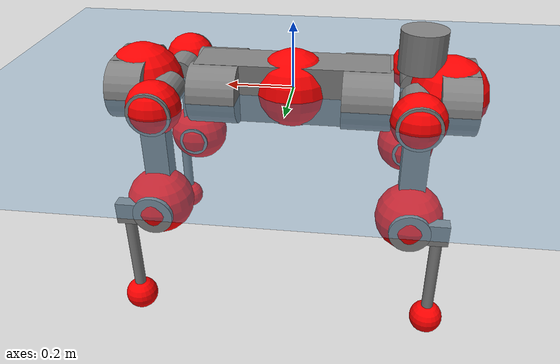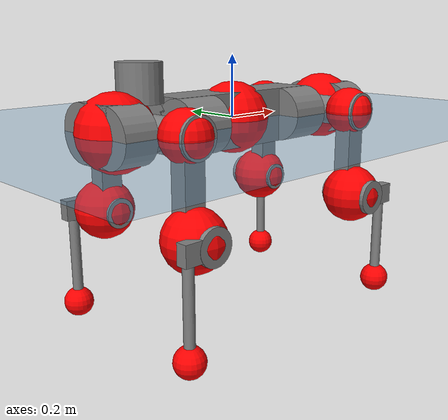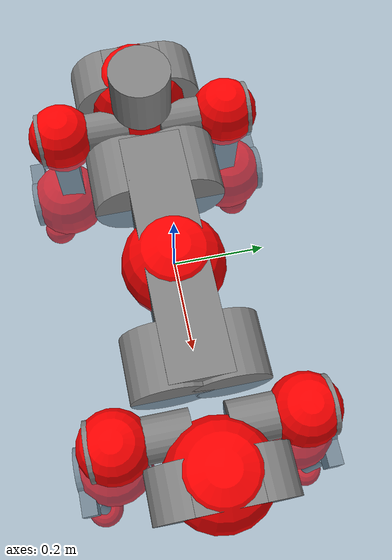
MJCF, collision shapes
<mujoco model="anymal_c">
  <compiler angle="radian" assetdir="assets" balanceinertia="true" inertiafromgeom="false"/>

  <option timestep="0.005" density="1.2" viscosity="2e-05"/>

  <size nkey="1"/>

  <visual>
    <quality shadowsize="8192"/>
    <map shadowclip="0.5"/>
  </visual>

  <default>
    <default class="/">
      <material specular="0" shininess="0.25"/>
      <geom contype="0" conaffinity="0" group="1" solref="-1000 -80"/>
      <site size="0.01 0.005 0.005" group="5"/>
      <general forcelimited="true" forcerange="-80 80" biastype="affine" gainprm="80" biasprm="0 -80 -2"/>
      <default class="anymal_c">
        <joint armature="0.01" damping="0.01" frictionloss="0.1"/>
        <default class="visual">
          <geom type="mesh" group="2"/>
          <default class="visual_zflip"/>
        </default>
        <default class="collision">
          <geom type="cylinder" group="3"/>
          <default class="foot">
            <geom size="0.03 0 0" type="sphere" condim="6" priority="1" friction="0.8 0.02 0.01" solimp="0.015 1 0.03"/>
          </default>
        </default>
      </default>
      <default class="reward_collision_sphere">
        <geom group="5" rgba="1 0 0 1"/>
      </default>
    </default>
  </default>

  <asset>
    <texture type="skybox" colorspace="auto" name="//unnamed_texture_0" builtin="gradient" rgb1="0.95 0.95 0.95" rgb2="0.95 0.95 0.95" width="100" height="600"/>
    <texture type="2d" colorspace="auto" name="texplane" builtin="checker" rgb1="0.345 0.575 0.748" rgb2="0.345 0.575 0.748" markrgb="1 1 1" width="512" height="512"/>
    <texture type="2d" colorspace="linear" name="base" file="base.png"/>
    <texture type="2d" colorspace="linear" name="top_shell" file="top_shell.png"/>
    <texture type="2d" colorspace="linear" name="bottom_shell" file="bottom_shell.png"/>
    <texture type="2d" colorspace="linear" name="remote" file="remote.png"/>
    <texture type="2d" colorspace="linear" name="hatch" file="hatch.png"/>
    <texture type="2d" colorspace="linear" name="handle" file="handle.png"/>
    <texture type="2d" colorspace="linear" name="face" file="face.png"/>
    <texture type="2d" colorspace="linear" name="battery" file="battery.png"/>
    <texture type="2d" colorspace="linear" name="lidar_cage" file="lidar_cage.png"/>
    <texture type="2d" colorspace="linear" name="depth_camera" file="depth_camera.png"/>
    <texture type="2d" colorspace="linear" name="wide_angle_camera" file="wide_angle_camera.png"/>
    <texture type="2d" colorspace="linear" name="lidar" file="lidar.png"/>
    <texture type="2d" colorspace="linear" name="drive" file="drive.png"/>
    <texture type="2d" colorspace="linear" name="hip_l" file="hip_l.png"/>
    <texture type="2d" colorspace="linear" name="shank_l" file="shank_l.png"/>
    <texture type="2d" colorspace="linear" name="foot" file="foot.png"/>
    <texture type="2d" colorspace="linear" name="thigh" file="thigh.png"/>
    <texture type="2d" colorspace="linear" name="shank_r" file="shank_r.png"/>
    <texture type="2d" colorspace="linear" name="hip_r" file="hip_r.png"/>
    <material name="MatPlane" class="/" texture="texplane" texuniform="true" texrepeat="2 2" specular="0.9" shininess="0.5"/>
    <material name="black_plastic" class="/" rgba="0.007 0.007 0.007 1"/>
    <material name="green" class="/" rgba="0.052 0.178 0.033 1"/>
    <material name="red" class="/" rgba="0.178 0.006 0.005 1"/>
    <material name="yellow" class="/" rgba="0.178 0.119 0.006 1"/>
    <material name="lwl" class="/" rgba="0.8 0.8 0.8 1"/>
    <material name="base" class="/" texture="base"/>
    <material name="top_shell" class="/" texture="top_shell"/>
    <material name="bottom_shell" class="/" texture="bottom_shell"/>
    <material name="hip_l" class="/" texture="hip_l"/>
    <material name="thigh" class="/" texture="thigh"/>
    <material name="shank_l" class="/" texture="shank_l"/>
    <material name="foot" class="/" texture="foot"/>
    <material name="hip_r" class="/" texture="hip_r"/>
    <material name="shank" class="/" texture="shank_r"/>
    <material name="hatch" class="/" texture="hatch"/>
    <material name="remote" class="/" texture="remote"/>
    <material name="handle" class="/" texture="handle"/>
    <material name="face" class="/" texture="face"/>
    <material name="depth_camera" class="/" texture="depth_camera"/>
    <material name="wide_angle_camera" class="/" texture="wide_angle_camera"/>
    <material name="battery" class="/" texture="battery"/>
    <material name="lidar_cage" class="/" texture="lidar_cage"/>
    <material name="lidar" class="/" texture="lidar"/>
    <material name="drive" class="/" texture="drive"/>
    <mesh name="base_0" class="/" file="base_0.obj"/>
    <mesh name="base_1" class="/" file="base_1.obj"/>
    <mesh name="base_2" class="/" file="base_2.obj"/>
    <mesh name="base_3" class="/" file="base_3.obj"/>
    <mesh name="base_4" class="/" file="base_4.obj"/>
    <mesh name="base_5" class="/" file="base_5.obj"/>
    <mesh name="top_shell" class="/" file="top_shell.obj"/>
    <mesh name="bottom_shell" class="/" file="bottom_shell.obj"/>
    <mesh name="remote" class="/" file="remote.obj"/>
    <mesh name="handle" class="/" file="handle.obj"/>
    <mesh name="face" class="/" file="face.obj"/>
    <mesh name="wide_angle_camera" class="/" file="wide_angle_camera.obj"/>
    <mesh name="depth_camera" class="/" file="depth_camera.obj"/>
    <mesh name="battery" class="/" file="battery.obj"/>
    <mesh name="lidar_cage" class="/" file="lidar_cage.obj"/>
    <mesh name="lidar" class="/" file="lidar.obj"/>
    <mesh name="drive" class="/" file="drive.obj"/>
    <mesh name="hip_l" class="/" file="hip_l.obj"/>
    <mesh name="thigh" class="/" file="thigh.obj"/>
    <mesh name="shank_l" class="/" file="shank_l.obj"/>
    <mesh name="foot" class="/" file="foot.obj"/>
    <mesh name="hip_r" class="/" file="hip_r.obj"/>
    <mesh name="hatch" class="/" file="hatch.obj"/>
    <mesh name="shank_r" class="/" file="shank_r.obj"/>
  </asset>

  <worldbody>
    <geom name="floor" class="/" size="100 100 0.125" type="plane" group="0" material="MatPlane"/>
    <light name="toplight_shadow" class="/" pos="0 0 5" dir="0.0990148 0.0990148 -0.990148" type="directional" ambient="0.04 0.04 0.04" diffuse="0.55 0.55 0.55" specular="0.12 0.12 0.12"/>
    <light name="toplight_fill" class="/" pos="0 0 5" dir="0.0990148 0.0990148 -0.990148" type="directional" castshadow="false" ambient="0.04 0.04 0.04" diffuse="0.3 0.3 0.3" specular="0.08 0.08 0.08"/>
    <body name="trunk" childclass="anymal_c" pos="0.000344336 -0.000497253 0.000243769" quat="1 1.16349e-05 -8.62457e-05 -0.000173615">
      <inertial pos="0.00233986 -0.000570092 0.0498854" quat="0.501428 0.502285 0.496127 0.500138" mass="17.5239" diaginertia="0.704688 0.356739 0.232789"/>
      <joint name="//unnamed_joint_0" type="free" armature="0" damping="0" frictionloss="0"/>
      <geom name="//unnamed_geom_1" class="visual" material="green" mesh="base_0"/>
      <geom name="//unnamed_geom_2" class="visual" material="yellow" mesh="base_1"/>
      <geom name="//unnamed_geom_3" class="visual" material="red" mesh="base_2"/>
      <geom name="//unnamed_geom_4" class="visual" material="black_plastic" mesh="base_3"/>
      <geom name="//unnamed_geom_5" class="visual" material="lwl" mesh="base_4"/>
      <geom name="//unnamed_geom_6" class="visual" material="base" mesh="base_5"/>
      <geom name="trunk_1" class="collision" size="0.283269 0.0683752 0.087911" type="box"/>
      <geom name="trunk_2" class="collision" size="0.087911 0.0708172" pos="0.221782 0.0627687 0" quat="0.707107 0 0.707107 0"/>
      <geom name="trunk_3" class="collision" size="0.087911 0.0708172" pos="-0.221782 0.0627687 0" quat="0.707107 0 0.707107 0"/>
      <geom name="trunk_4" class="collision" size="0.087911 0.0708172" pos="0.221782 -0.0627687 0" quat="0.707107 0 0.707107 0"/>
      <geom name="trunk_5" class="collision" size="0.087911 0.0708172" pos="-0.221782 -0.0627687 0" quat="0.707107 0 0.707107 0"/>
      <geom name="//unnamed_geom_12" class="visual" material="top_shell" mesh="top_shell"/>
      <geom name="//unnamed_geom_13" class="visual" material="bottom_shell" mesh="bottom_shell"/>
      <geom name="//unnamed_geom_14" class="visual" material="remote" mesh="remote"/>
      <geom name="//unnamed_geom_15" class="visual" material="handle" mesh="handle"/>
      <geom name="//unnamed_geom_16" class="visual" pos="0.42266 0 0" quat="1 0 0 0" material="face" mesh="face"/>
      <geom name="trunk_6" class="collision" size="0.0537234 0.0683752 0.087911" pos="0.478743 0 0" type="box"/>
      <geom name="//unnamed_geom_18" class="collision" size="0.087911 0.0537234" pos="0.478743 0.0627687 0" quat="0.707107 0 0.707107 0"/>
      <geom name="//unnamed_geom_19" class="collision" size="0.087911 0.0537234" pos="0.478743 -0.0627687 0" quat="0.707107 0 0.707107 0"/>
      <geom name="//unnamed_geom_20" class="visual" pos="0.470738 0 -0.029565" quat="0.965926 0 0.258819 0" material="depth_camera" mesh="depth_camera"/>
      <geom name="//unnamed_geom_21" class="visual" pos="0.523099 0 0.0151793" material="wide_angle_camera" mesh="wide_angle_camera"/>
      <geom name="//unnamed_geom_22" class="visual_zflip" pos="-0.42266 0 0" quat="0 0 0 1" material="face" mesh="face"/>
      <geom name="trunk_7" class="collision" size="0.0537234 0.0683752 0.087911" pos="-0.478743 0 0" quat="0 0 0 1" type="box"/>
      <geom name="//unnamed_geom_24" class="collision" size="0.087911 0.0537234" pos="-0.478743 -0.0627687 0" quat="0 -0.707107 0 0.707107"/>
      <geom name="//unnamed_geom_25" class="collision" size="0.087911 0.0537234" pos="-0.478743 0.0627687 0" quat="0 -0.707107 0 0.707107"/>
      <geom name="//unnamed_geom_26" class="visual" pos="-0.470738 0 -0.029565" quat="0 -0.258819 0 0.965926" material="depth_camera" mesh="depth_camera"/>
      <geom name="//unnamed_geom_27" class="visual_zflip" pos="-0.523099 0 0.0151793" quat="0 0 0 1" material="wide_angle_camera" mesh="wide_angle_camera"/>
      <geom name="//unnamed_geom_28" class="visual" material="battery" mesh="battery"/>
      <geom name="//unnamed_geom_29" class="visual" pos="0 0.0669472 0.0294996" quat="0.683013 -0.183013 0.183013 0.683013" material="depth_camera" mesh="depth_camera"/>
      <geom name="//unnamed_geom_30" class="visual" pos="0 -0.0669472 0.0294996" quat="0.683013 0.183013 0.183013 -0.683013" material="depth_camera" mesh="depth_camera"/>
      <geom name="//unnamed_geom_31" class="visual" pos="-0.371166 0 0.0745278" quat="1 0 0 0" material="lidar_cage" mesh="lidar_cage"/>
      <geom name="trunk_8" class="collision" size="0.0683752 0.0586073" pos="-0.371166 0 0.135367"/>
      <geom name="//unnamed_geom_33" class="visual" pos="-0.371166 -4.83198e-05 0.144189" quat="0.707107 0 0 -0.707107" material="lidar" mesh="lidar"/>
      <geom name="//unnamed_geom_34" class="visual" pos="0.305804 0.093298 -2.02324e-09" quat="0.258819 0.965926 0 0" material="drive" mesh="drive"/>
      <geom name="//unnamed_geom_35" class="visual" pos="0.305804 -0.093298 2.02324e-09" quat="0.258819 -0.965926 0 0" material="drive" mesh="drive"/>
      <geom name="//unnamed_geom_36" class="visual" pos="-0.305804 0.093298 2.02324e-09" quat="0 0 0.965926 -0.258819" material="drive" mesh="drive"/>
      <geom name="//unnamed_geom_37" class="visual" pos="-0.305804 -0.093298 -2.02324e-09" quat="0 0 -0.965926 -0.258819" material="drive" mesh="drive"/>
      <geom name="//unnamed_geom_38" class="visual" pos="0.118284 0 0.0740208" quat="1 0 0 0" material="hatch" mesh="hatch"/>
      <geom name="//unnamed_geom_39" class="reward_collision_sphere" size="0.117215"/>
      <geom name="//unnamed_geom_40" class="reward_collision_sphere" size="0.117215" pos="0.458859 0 0"/>
      <geom name="//unnamed_geom_41" class="reward_collision_sphere" size="0.117215" pos="-0.458859 0 0"/>
      <site name="imu" pos="0.254794 0.00580866 0.0421468" size="0.00976789"/>
      <camera name="track" pos="0 -1.79339 0" quat="0.707107 0.707107 0 0" mode="trackcom"/>
      <camera name="ego_camera" pos="0.458859 0 -0.0405594" quat="-0.5 -0.5 0.5 0.5"/>
      <body name="LF_HIP" pos="0.306785 0.0936301 0.00146738" quat="0.258815 0.965927 2.45072e-05 -2.11241e-05">
        <inertial pos="0.05714 -0.0129628 -0.00849736" quat="-0.12795 0.709748 -0.135272 0.679402" mass="2.58395" diaginertia="0.00643612 0.00288257 0.0035286"/>
        <joint name="LF_HAA" pos="0 0 0" axis="0.99995 0.00280152 -0.00956617" range="-0.716173 0.488969" armature="0.00933472" damping="0.0128719" frictionloss="0.093424"/>
        <geom name="//unnamed_geom_42" class="visual" pos="0 -0.000119018 1.95486e-05" quat="0.258819 -0.965926 0 0" material="hip_l" mesh="hip_l"/>
        <geom name="//unnamed_geom_43" class="visual" pos="0.0610792 -0.0724328 -0.0426866" quat="0.183013 -0.683013 0.683013 0.183013" material="drive" mesh="drive"/>
        <geom name="//unnamed_geom_44" class="collision" size="0.0488394 0.0683752" pos="0.0610792 -0.0107243 -0.00700156" quat="-0.353553 -0.612372 0.612372 -0.353553"/>
        <body name="LF_THIGH" pos="0.0624028 -0.066319 -0.0421965" quat="0.183333 -0.682901 0.683023 0.183074">
          <inertial pos="0.0318697 6.19681e-05 -0.250214" quat="0.992939 -0.00288116 -0.0840223 0.0836888" mass="2.85821" diaginertia="0.033393 0.0173855 0.00450302"/>
          <joint name="LF_HFE" pos="0 0 0" axis="0.999985 -0.00505006 0.00228266" range="-3.15261 3.13951" armature="0.00971812" damping="0.0141622" frictionloss="0.10234"/>
          <geom name="//unnamed_geom_45" class="visual" pos="0.00244704 3.85595e-06 0" quat="0.707107 0 0 -0.707107" material="thigh" mesh="thigh"/>
          <geom name="//unnamed_geom_46" class="collision" size="0.0634913 0.0390715" pos="0.0407875 0 0" quat="0.5 0.5 -0.5 -0.5"/>
          <geom name="//unnamed_geom_47" class="collision" size="0.0366296 0.0293037 0.138034" pos="0.0305906 0 -0.14329" quat="0.707107 0 0 -0.707107" type="box"/>
          <geom name="//unnamed_geom_48" class="visual" pos="0.102275 0 -0.288985" quat="1 0 0 0" material="drive" mesh="drive"/>
          <geom name="//unnamed_geom_49" class="collision" size="0.0488394 0.0683752" pos="0.0308965 0 -0.288985" quat="0.707107 0 0.707107 0"/>
          <geom name="//unnamed_geom_50" class="reward_collision_sphere" size="0.0781431" pos="0.0254922 0 0"/>
          <body name="LF_SHANK" pos="0.102561 -0.00163728 -0.289714" quat="1 -0.000153311 0.000312566 9.85385e-05">
            <inertial pos="0.00469414 -0.055359 -0.0817279" quat="0.992781 -0.117176 0.00224035 -0.0255009" mass="0.535785" diaginertia="0.0111387 0.0052924 0.00118602"/>
            <joint name="LF_KFE" pos="0 0 0" axis="1 -0.000411787 0.000696393" range="-3.13669 3.12977" armature="0.00985676" damping="0.0100613" frictionloss="0.09748"/>
            <geom name="//unnamed_geom_51" class="visual" pos="0.000797925 0.00425458 0" quat="0.707107 0 0 -0.707107" material="shank_l" mesh="shank_l"/>
            <geom name="LF_kfe_act" class="collision" size="0.0586073 0.0195358" pos="0.0203937 0 0" quat="0.5 0.5 -0.5 -0.5"/>
            <geom name="//unnamed_geom_53" class="collision" size="0.0561644 0.0329666 0.018559" pos="0.0203937 -0.0515591 0" quat="0.5 0.5 -0.5 -0.5" type="box"/>
            <geom name="//unnamed_geom_54" class="visual" pos="0.0133067 -0.0774933 -0.342696" quat="0.382683 0 0 -0.92388" material="foot" mesh="foot"/>
            <geom name="LF_calf" class="collision" size="0.0170938 0.137973" pos="0.0133069 -0.0788644 -0.171348" quat="0.707107 0 0 -0.707107"/>
            <geom name="LF_foot" class="foot" size="0.0294859" pos="0.0133069 -0.0788644 -0.319882" quat="0.707107 0 0 -0.707107"/>
            <geom name="//unnamed_geom_57" class="reward_collision_sphere" size="0.0976789" pos="-0.0509843 0 0"/>
            <geom name="//unnamed_geom_58" class="reward_collision_sphere" size="0.0488394" pos="0.0133069 -0.0788644 -0.319882"/>
            <site name="LF_foot" class="foot" pos="0.0133069 -0.0788644 -0.319882" quat="0.707107 0 0 -0.707107" size="0.00976789"/>
          </body>
        </body>
      </body>
      <body name="RF_HIP" pos="0.305349 -0.0926239 0.000488026" quat="0.258981 -0.965882 1.51954e-05 -0.00032909">
        <inertial pos="0.0589799 0.0140287 -0.00909571" quat="0.137938 0.678088 0.13152 0.70984" mass="2.63096" diaginertia="0.00655213 0.00291206 0.00356283"/>
        <joint name="RF_HAA" pos="0 0 0" axis="0.999994 0.00115561 0.00328584" range="-0.507167 0.727257" armature="0.00976148" damping="0.0115986" frictionloss="0.0978878"/>
        <geom name="//unnamed_geom_59" class="visual" pos="0 0.000119017 1.95486e-05" quat="0.258819 0.965926 0 0" material="hip_r" mesh="hip_r"/>
        <geom name="//unnamed_geom_60" class="visual" pos="0.0610792 0.0724328 -0.0426866" quat="0.183013 0.683013 0.683013 -0.183013" material="drive" mesh="drive"/>
        <geom name="//unnamed_geom_61" class="collision" size="0.0488394 0.0683752" pos="0.0610792 0.0107243 -0.00700156" quat="-0.353553 0.612372 0.612372 0.353553"/>
        <body name="RF_THIGH" pos="0.061231 0.0656975 -0.043604" quat="0.183064 0.683239 0.68277 -0.183019">
          <inertial pos="0.0324147 0.00136953 -0.248622" quat="0.992792 -0.0048915 -0.0804457 0.0887053" mass="2.85559" diaginertia="0.0331266 0.0173991 0.00447331"/>
          <joint name="RF_HFE" pos="0 0 0" axis="0.999992 -0.00332753 0.00206899" stiffness="0.0064471" range="-3.14738 3.12085" armature="0.00968612" damping="0.00857198" frictionloss="0.1002"/>
          <geom name="//unnamed_geom_62" class="visual" pos="0.00244704 3.85595e-06 0" quat="0.707107 0 0 -0.707107" material="thigh" mesh="thigh"/>
          <geom name="//unnamed_geom_63" class="collision" size="0.0634913 0.0390715" pos="0.0407875 0 0" quat="0.5 0.5 0.5 0.5"/>
          <geom name="//unnamed_geom_64" class="collision" size="0.0366296 0.0293037 0.138034" pos="0.0305906 0 -0.14329" quat="0.707107 0 0 0.707107" type="box"/>
          <geom name="//unnamed_geom_65" class="visual" pos="0.102275 0 -0.288985" quat="1 0 0 0" material="drive" mesh="drive"/>
          <geom name="//unnamed_geom_66" class="collision" size="0.0488394 0.0683752" pos="0.0308965 0 -0.288985" quat="0.707107 0 0.707107 0"/>
          <geom name="//unnamed_geom_67" class="reward_collision_sphere" size="0.0781431" pos="0.0254922 0 0"/>
          <body name="RF_SHANK" pos="0.101498 4.6855e-05 -0.288985" quat="1 0.000407279 0.000401039 -0.000156137">
            <inertial pos="0.00733303 0.0558076 -0.0815678" quat="0.992892 0.115675 -0.00131876 0.0279635" mass="0.545663" diaginertia="0.0110181 0.00533424 0.00120983"/>
            <joint name="RF_KFE" pos="0 0 0" axis="0.999998 8.13655e-05 -0.00174114" range="-3.14728 3.14224" armature="0.00996525" damping="0.0111379" frictionloss="0.0988842"/>
            <geom name="//unnamed_geom_68" class="visual" pos="0.00079792 -0.00425457 0" quat="0.707107 0 0 0.707107" material="shank" mesh="shank_r"/>
            <geom name="RF_kfe_act" class="collision" size="0.0586073 0.0195358" pos="0.0203937 0 0" quat="0.5 0.5 0.5 0.5"/>
            <geom name="//unnamed_geom_70" class="collision" size="0.0561644 0.0329666 0.018559" pos="0.0203937 0.0515591 0" quat="0.5 0.5 0.5 0.5" type="box"/>
            <geom name="//unnamed_geom_71" class="visual" pos="0.0133071 0.0774933 -0.342696" quat="0.382683 0 0 0.92388" material="foot" mesh="foot"/>
            <geom name="RF_calf" class="collision" size="0.0170938 0.137973" pos="0.0133069 0.0788644 -0.171348" quat="0.707107 0 0 0.707107"/>
            <geom name="RF_foot" class="foot" size="0.0296745" pos="0.0133069 0.0788644 -0.319882" quat="0.707107 0 0 0.707107"/>
            <geom name="//unnamed_geom_74" class="reward_collision_sphere" size="0.0976789" pos="-0.0509843 0 0"/>
            <geom name="//unnamed_geom_75" class="reward_collision_sphere" size="0.0488394" pos="0.0133069 0.0788644 -0.319882"/>
            <site name="RF_foot" class="foot" pos="0.0133069 0.0788644 -0.319882" quat="0.707107 0 0 0.707107" size="0.00976789"/>
          </body>
        </body>
      </body>
      <body name="LH_HIP" pos="-0.303597 0.0935201 0.000540559" quat="-1.60224e-05 -5.26156e-05 0.965895 -0.258935">
        <inertial pos="0.0587485 0.0120361 -0.00853084" quat="0.13468 0.679041 0.128624 0.710085" mass="2.61919" diaginertia="0.0064373 0.00285425 0.00352336"/>
        <joint name="LH_HAA" pos="0 0 0" axis="0.999995 0.000962023 0.00294878" range="-0.509238 0.710956" armature="0.00975244" damping="0.00941671" frictionloss="0.0988583"/>
        <geom name="//unnamed_geom_76" class="visual" pos="0 0.000119017 1.95486e-05" quat="-0.258819 -0.965926 0 0" material="hip_r" mesh="hip_r"/>
        <geom name="//unnamed_geom_77" class="visual" pos="0.0610792 0.0724328 -0.0426866" quat="0.183013 0.683013 0.683013 -0.183013" material="drive" mesh="drive"/>
        <geom name="//unnamed_geom_78" class="collision" size="0.0488394 0.0683752" pos="0.0610792 0.0107243 -0.00700156" quat="-0.353553 0.612372 0.612372 0.353553"/>
        <body name="LH_THIGH" pos="0.0596937 0.0644402 -0.0433807" quat="0.183057 0.682909 0.683112 -0.182986">
          <inertial pos="0.0319873 0.000811858 -0.249244" quat="0.992779 -0.00678275 -0.0797808 0.0893279" mass="2.85636" diaginertia="0.0334019 0.0171264 0.00437851"/>
          <joint name="LH_HFE" pos="0 0 0" axis="1 0.000458853 0.000264506" range="-3.15672 3.12222" armature="0.0100677" damping="0.00745415" frictionloss="0.0976731"/>
          <geom name="//unnamed_geom_79" class="visual" pos="0.00244704 3.85595e-06 0" quat="0.707107 0 0 -0.707107" material="thigh" mesh="thigh"/>
          <geom name="//unnamed_geom_80" class="collision" size="0.0634913 0.0390715" pos="0.0407875 0 0" quat="0.5 0.5 -0.5 -0.5"/>
          <geom name="//unnamed_geom_81" class="collision" size="0.0366296 0.0293037 0.138034" pos="0.0305906 0 -0.14329" quat="0.707107 0 0 -0.707107" type="box"/>
          <geom name="//unnamed_geom_82" class="visual" pos="0.102275 0 -0.288985" quat="1 0 0 0" material="drive" mesh="drive"/>
          <geom name="//unnamed_geom_83" class="collision" size="0.0488394 0.0683752" pos="0.0308965 0 -0.288985" quat="0.707107 0 0.707107 0"/>
          <geom name="//unnamed_geom_84" class="reward_collision_sphere" size="0.0781431" pos="0.0254922 0 0"/>
          <body name="LH_SHANK" pos="0.103185 -0.000913799 -0.290549" quat="1 -0.000486688 0.000104348 -0.000608426">
            <inertial pos="0.00560758 0.0548684 -0.0802341" quat="0.992935 0.115141 -0.00473439 0.0282867" mass="0.545629" diaginertia="0.0112305 0.00541548 0.00120019"/>
            <joint name="LH_KFE" pos="0 0 0" axis="0.999982 0.00190689 0.00561338" range="-3.13457 3.15766" armature="0.00999348" damping="0.00997808" frictionloss="0.0994016"/>
            <geom name="//unnamed_geom_85" class="visual" pos="0.00079792 -0.00425457 0" quat="-0.707107 0 0 -0.707107" material="shank" mesh="shank_r"/>
            <geom name="LH_kfe_act" class="collision" size="0.0586073 0.0195358" pos="0.0203937 0 0" quat="0.5 0.5 -0.5 -0.5"/>
            <geom name="//unnamed_geom_87" class="collision" size="0.0561644 0.0329666 0.018559" pos="0.0203937 0.0515591 0" quat="0.5 0.5 -0.5 -0.5" type="box"/>
            <geom name="//unnamed_geom_88" class="visual" pos="0.0133071 0.0774933 -0.342696" quat="-0.382683 0 0 -0.92388" material="foot" mesh="foot"/>
            <geom name="LH_calf" class="collision" size="0.0170938 0.137973" pos="0.0133069 0.0788644 -0.171348" quat="0.707107 0 0 -0.707107"/>
            <geom name="LH_foot" class="foot" size="0.0310905" pos="0.0133069 0.0788644 -0.319882" quat="0.707107 0 0 -0.707107"/>
            <geom name="//unnamed_geom_91" class="reward_collision_sphere" size="0.0976789" pos="-0.0509843 0 0"/>
            <geom name="//unnamed_geom_92" class="reward_collision_sphere" size="0.0488394" pos="0.0133069 0.0788644 -0.319882"/>
            <site name="LH_foot" class="foot" pos="0.0133069 0.0788644 -0.319882" quat="0.707107 0 0 -0.707107" size="0.00976789"/>
          </body>
        </body>
      </body>
      <body name="RH_HIP" pos="-0.306686 -0.0937143 -3.45228e-05" quat="0.000178971 -0.000212355 -0.96594 -0.258765">
        <inertial pos="0.0571977 -0.0147204 -0.00874552" quat="-0.130863 0.70723 -0.136407 0.681244" mass="2.57214" diaginertia="0.00633953 0.0028036 0.00346547"/>
        <joint name="RH_HAA" pos="0 0 0" axis="0.999977 0.00280589 -0.00622235" range="-0.721359 0.487369" armature="0.00981881" damping="0.00638708" frictionloss="0.0978676"/>
        <geom name="//unnamed_geom_93" class="visual" pos="0 -0.000119018 1.95486e-05" quat="-0.258819 0.965926 0 0" material="hip_l" mesh="hip_l"/>
        <geom name="//unnamed_geom_94" class="visual" pos="0.0610792 -0.0724328 -0.0426866" quat="-0.183013 0.683013 -0.683013 -0.183013" material="drive" mesh="drive"/>
        <geom name="//unnamed_geom_95" class="collision" size="0.0488394 0.0683752" pos="0.0610792 -0.0107243 -0.00700156" quat="0.353553 0.612372 -0.612372 0.353553"/>
        <body name="RH_THIGH" pos="0.0614477 -0.0647552 -0.0423664" quat="-0.183103 0.683023 -0.682984 -0.182989">
          <inertial pos="0.0318343 0.000104194 -0.249037" quat="0.993763 -0.00564018 -0.0742156 0.0830389" mass="2.85606" diaginertia="0.0335535 0.0173567 0.00457402"/>
          <joint name="RH_HFE" pos="0 0 0" axis="0.999996 -0.000505564 -0.00268406" range="-3.13686 3.13342" armature="0.00975481" damping="0.00472188" frictionloss="0.102064"/>
          <geom name="//unnamed_geom_96" class="visual" pos="0.00244704 3.85595e-06 0" quat="0.707107 0 0 -0.707107" material="thigh" mesh="thigh"/>
          <geom name="//unnamed_geom_97" class="collision" size="0.0634913 0.0390715" pos="0.0407875 0 0" quat="0.5 0.5 0.5 0.5"/>
          <geom name="//unnamed_geom_98" class="collision" size="0.0366296 0.0293037 0.138034" pos="0.0305906 0 -0.14329" quat="0.707107 0 0 0.707107" type="box"/>
          <geom name="//unnamed_geom_99" class="visual" pos="0.102275 0 -0.288985" quat="1 0 0 0" material="drive" mesh="drive"/>
          <geom name="//unnamed_geom_100" class="collision" size="0.0488394 0.0683752" pos="0.0308965 0 -0.288985" quat="0.707107 0 0.707107 0"/>
          <geom name="//unnamed_geom_101" class="reward_collision_sphere" size="0.0781431" pos="0.0254922 0 0"/>
          <body name="RH_SHANK" pos="0.101896 0.000459905 -0.289135" quat="1 0.000202486 -0.000124399 2.99195e-05">
            <inertial pos="0.00541134 -0.0558783 -0.0810796" quat="0.99307 -0.114939 -0.00168371 -0.0244418" mass="0.548446" diaginertia="0.0113175 0.005365 0.00119834"/>
            <joint name="RH_KFE" pos="0 0 0" axis="0.999994 0.00343718 -8.98294e-05" range="-3.13089 3.15021" armature="0.00981495" damping="0.010603" frictionloss="0.102016"/>
            <geom name="//unnamed_geom_102" class="visual" pos="0.000797925 0.00425458 0" quat="0.707107 0 0 -0.707107" material="shank_l" mesh="shank_l"/>
            <geom name="RH_kfe_act" class="collision" size="0.0586073 0.0195358" pos="0.0203937 0 0" quat="0.5 0.5 0.5 0.5"/>
            <geom name="//unnamed_geom_104" class="collision" size="0.0561644 0.0329666 0.018559" pos="0.0203937 -0.0515591 0" quat="0.5 0.5 0.5 0.5" type="box"/>
            <geom name="//unnamed_geom_105" class="visual" pos="0.0133067 -0.0774933 -0.342696" quat="0.382683 0 0 -0.92388" material="foot" mesh="foot"/>
            <geom name="RH_calf" class="collision" size="0.0170938 0.137973" pos="0.0133069 -0.0788644 -0.171348" quat="0.707107 0 0 0.707107"/>
            <geom name="RH_foot" class="foot" size="0.0275092" pos="0.0133069 -0.0788644 -0.319882" quat="0.707107 0 0 0.707107"/>
            <geom name="//unnamed_geom_108" class="reward_collision_sphere" size="0.0976789" pos="-0.0509843 0 0"/>
            <geom name="//unnamed_geom_109" class="reward_collision_sphere" size="0.0488394" pos="0.0133069 -0.0788644 -0.319882"/>
            <site name="RH_foot" class="foot" pos="0.0133069 -0.0788644 -0.319882" quat="0.707107 0 0 0.707107" size="0.00976789"/>
          </body>
        </body>
      </body>
    </body>
  </worldbody>

  <contact>
    <pair class="/" geom1="floor" geom2="LF_foot" name="//unnamed_contact_0"/>
    <pair class="/" geom1="floor" geom2="RF_foot" name="//unnamed_contact_1"/>
    <pair class="/" geom1="floor" geom2="LH_foot" name="//unnamed_contact_2"/>
    <pair class="/" geom1="floor" geom2="RH_foot" name="//unnamed_contact_3"/>
  </contact>

  <actuator>
    <general name="LF_HAA" class="/" joint="LF_HAA" forcerange="-79.1701 79.1701" gainprm="79.142" biasprm="0 -79.142 -1.87986"/>
    <general name="LF_HFE" class="/" joint="LF_HFE" forcerange="-78.4594 78.4594" gainprm="79.142" biasprm="0 -79.142 -1.87986"/>
    <general name="LF_KFE" class="/" joint="LF_KFE" forcerange="-76.0111 76.0111" gainprm="79.142" biasprm="0 -79.142 -1.87986"/>
    <general name="RF_HAA" class="/" joint="RF_HAA" forcerange="-78.6393 78.6393" gainprm="79.142" biasprm="0 -79.142 -1.87986"/>
    <general name="RF_HFE" class="/" joint="RF_HFE" forcerange="-81.1546 81.1546" gainprm="79.142" biasprm="0 -79.142 -1.87986"/>
    <general name="RF_KFE" class="/" joint="RF_KFE" forcerange="-75.6437 75.6437" gainprm="79.142" biasprm="0 -79.142 -1.87986"/>
    <general name="LH_HAA" class="/" joint="LH_HAA" forcerange="-78.6745 78.6745" gainprm="79.142" biasprm="0 -79.142 -1.87986"/>
    <general name="LH_HFE" class="/" joint="LH_HFE" forcerange="-76.0568 76.0568" gainprm="79.142" biasprm="0 -79.142 -1.87986"/>
    <general name="LH_KFE" class="/" joint="LH_KFE" forcerange="-81.5093 81.5093" gainprm="79.142" biasprm="0 -79.142 -1.87986"/>
    <general name="RH_HAA" class="/" joint="RH_HAA" forcerange="-79.0534 79.0534" gainprm="79.142" biasprm="0 -79.142 -1.87986"/>
    <general name="RH_HFE" class="/" joint="RH_HFE" forcerange="-77.613 77.613" gainprm="79.142" biasprm="0 -79.142 -1.87986"/>
    <general name="RH_KFE" class="/" joint="RH_KFE" forcerange="-74.7515 74.7515" gainprm="79.142" biasprm="0 -79.142 -1.87986"/>
  </actuator>

  <sensor>
    <gyro site="imu" name="imu_angular_velocity"/>
    <velocimeter site="imu" name="imu_linear_velocity"/>
    <framelinvel objtype="site" objname="LF_foot" name="LF_foot_global_linear_velocity"/>
    <framelinvel objtype="site" objname="RF_foot" name="RF_foot_global_linear_velocity"/>
    <framelinvel objtype="site" objname="LH_foot" name="LH_foot_global_linear_velocity"/>
    <framelinvel objtype="site" objname="RH_foot" name="RH_foot_global_linear_velocity"/>
  </sensor>

  <keyframe>
    <key name="home" qpos="0 0 0.55 1 0 0 0 0 0.4 -0.8 0 -0.4 0.8 0 -0.4 0.8 0 0.4 -0.8"/>
  </keyframe>
</mujoco>
